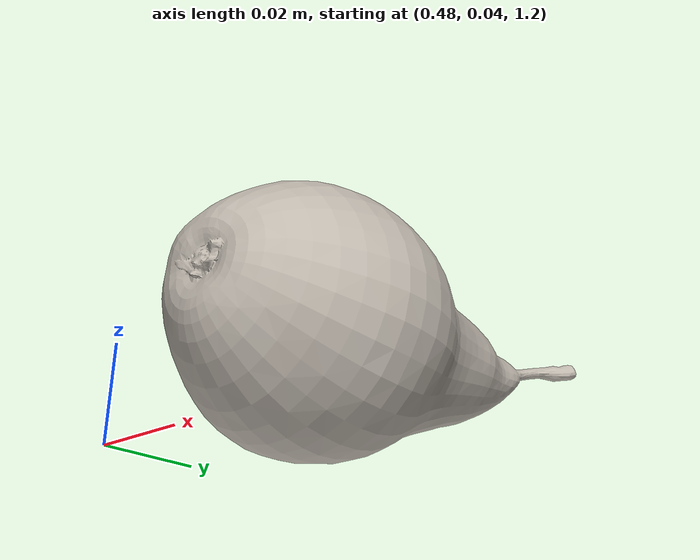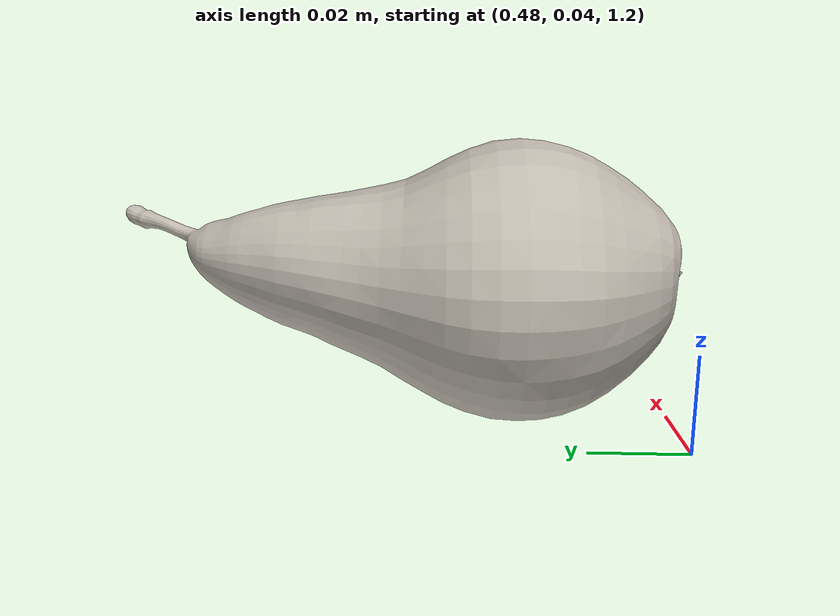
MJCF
<mujoco model="pear_7">
  <asset>
    <mesh file="../objects/bigym/pear_1/visual/model_normalized_0.obj" name="pear_1_model_normalized_0_vis" scale="0.12 0.12 0.12" refquat="0.4999999999999999 0.4999999999999999 0.5 0.5"/>
    <mesh file="../objects/bigym/pear_1/collision/model_normalized_collision_22.obj" name="pear_1_model_normalized_collision_22._coll" scale="0.12 0.12 0.12" refquat="0.4999999999999999 0.4999999999999999 0.5 0.5"/>
    <mesh file="../objects/bigym/pear_1/collision/model_normalized_collision_23.obj" name="pear_1_model_normalized_collision_23._coll" scale="0.12 0.12 0.12" refquat="0.4999999999999999 0.4999999999999999 0.5 0.5"/>
    <mesh file="../objects/bigym/pear_1/collision/model_normalized_collision_21.obj" name="pear_1_model_normalized_collision_21._coll" scale="0.12 0.12 0.12" refquat="0.4999999999999999 0.4999999999999999 0.5 0.5"/>
    <mesh file="../objects/bigym/pear_1/collision/model_normalized_collision_20.obj" name="pear_1_model_normalized_collision_20._coll" scale="0.12 0.12 0.12" refquat="0.4999999999999999 0.4999999999999999 0.5 0.5"/>
    <mesh file="../objects/bigym/pear_1/collision/model_normalized_collision_24.obj" name="pear_1_model_normalized_collision_24._coll" scale="0.12 0.12 0.12" refquat="0.4999999999999999 0.4999999999999999 0.5 0.5"/>
    <mesh file="../objects/bigym/pear_1/collision/model_normalized_collision_30.obj" name="pear_1_model_normalized_collision_30._coll" scale="0.12 0.12 0.12" refquat="0.4999999999999999 0.4999999999999999 0.5 0.5"/>
    <mesh file="../objects/bigym/pear_1/collision/model_normalized_collision_18.obj" name="pear_1_model_normalized_collision_18._coll" scale="0.12 0.12 0.12" refquat="0.4999999999999999 0.4999999999999999 0.5 0.5"/>
    <mesh file="../objects/bigym/pear_1/collision/model_normalized_collision_19.obj" name="pear_1_model_normalized_collision_19._coll" scale="0.12 0.12 0.12" refquat="0.4999999999999999 0.4999999999999999 0.5 0.5"/>
    <mesh file="../objects/bigym/pear_1/collision/model_normalized_collision_31.obj" name="pear_1_model_normalized_collision_31._coll" scale="0.12 0.12 0.12" refquat="0.4999999999999999 0.4999999999999999 0.5 0.5"/>
    <mesh file="../objects/bigym/pear_1/collision/model_normalized_collision_25.obj" name="pear_1_model_normalized_collision_25._coll" scale="0.12 0.12 0.12" refquat="0.4999999999999999 0.4999999999999999 0.5 0.5"/>
    <mesh file="../objects/bigym/pear_1/collision/model_normalized_collision_27.obj" name="pear_1_model_normalized_collision_27._coll" scale="0.12 0.12 0.12" refquat="0.4999999999999999 0.4999999999999999 0.5 0.5"/>
    <mesh file="../objects/bigym/pear_1/collision/model_normalized_collision_26.obj" name="pear_1_model_normalized_collision_26._coll" scale="0.12 0.12 0.12" refquat="0.4999999999999999 0.4999999999999999 0.5 0.5"/>
    <mesh file="../objects/bigym/pear_1/collision/model_normalized_collision_9.obj" name="pear_1_model_normalized_collision_9._coll" scale="0.12 0.12 0.12" refquat="0.4999999999999999 0.4999999999999999 0.5 0.5"/>
    <mesh file="../objects/bigym/pear_1/collision/model_normalized_collision_8.obj" name="pear_1_model_normalized_collision_8._coll" scale="0.12 0.12 0.12" refquat="0.4999999999999999 0.4999999999999999 0.5 0.5"/>
    <mesh file="../objects/bigym/pear_1/collision/model_normalized_collision_6.obj" name="pear_1_model_normalized_collision_6._coll" scale="0.12 0.12 0.12" refquat="0.4999999999999999 0.4999999999999999 0.5 0.5"/>
    <mesh file="../objects/bigym/pear_1/collision/model_normalized_collision_7.obj" name="pear_1_model_normalized_collision_7._coll" scale="0.12 0.12 0.12" refquat="0.4999999999999999 0.4999999999999999 0.5 0.5"/>
    <mesh file="../objects/bigym/pear_1/collision/model_normalized_collision_5.obj" name="pear_1_model_normalized_collision_5._coll" scale="0.12 0.12 0.12" refquat="0.4999999999999999 0.4999999999999999 0.5 0.5"/>
    <mesh file="../objects/bigym/pear_1/collision/model_normalized_collision_4.obj" name="pear_1_model_normalized_collision_4._coll" scale="0.12 0.12 0.12" refquat="0.4999999999999999 0.4999999999999999 0.5 0.5"/>
    <mesh file="../objects/bigym/pear_1/collision/model_normalized_collision_0.obj" name="pear_1_model_normalized_collision_0._coll" scale="0.12 0.12 0.12" refquat="0.4999999999999999 0.4999999999999999 0.5 0.5"/>
    <mesh file="../objects/bigym/pear_1/collision/model_normalized_collision_1.obj" name="pear_1_model_normalized_collision_1._coll" scale="0.12 0.12 0.12" refquat="0.4999999999999999 0.4999999999999999 0.5 0.5"/>
    <mesh file="../objects/bigym/pear_1/collision/model_normalized_collision_3.obj" name="pear_1_model_normalized_collision_3._coll" scale="0.12 0.12 0.12" refquat="0.4999999999999999 0.4999999999999999 0.5 0.5"/>
    <mesh file="../objects/bigym/pear_1/collision/model_normalized_collision_2.obj" name="pear_1_model_normalized_collision_2._coll" scale="0.12 0.12 0.12" refquat="0.4999999999999999 0.4999999999999999 0.5 0.5"/>
    <mesh file="../objects/bigym/pear_1/collision/model_normalized_collision_17.obj" name="pear_1_model_normalized_collision_17._coll" scale="0.12 0.12 0.12" refquat="0.4999999999999999 0.4999999999999999 0.5 0.5"/>
    <mesh file="../objects/bigym/pear_1/collision/model_normalized_collision_16.obj" name="pear_1_model_normalized_collision_16._coll" scale="0.12 0.12 0.12" refquat="0.4999999999999999 0.4999999999999999 0.5 0.5"/>
    <mesh file="../objects/bigym/pear_1/collision/model_normalized_collision_28.obj" name="pear_1_model_normalized_collision_28._coll" scale="0.12 0.12 0.12" refquat="0.4999999999999999 0.4999999999999999 0.5 0.5"/>
    <mesh file="../objects/bigym/pear_1/collision/model_normalized_collision_14.obj" name="pear_1_model_normalized_collision_14._coll" scale="0.12 0.12 0.12" refquat="0.4999999999999999 0.4999999999999999 0.5 0.5"/>
    <mesh file="../objects/bigym/pear_1/collision/model_normalized_collision_15.obj" name="pear_1_model_normalized_collision_15._coll" scale="0.12 0.12 0.12" refquat="0.4999999999999999 0.4999999999999999 0.5 0.5"/>
    <mesh file="../objects/bigym/pear_1/collision/model_normalized_collision_29.obj" name="pear_1_model_normalized_collision_29._coll" scale="0.12 0.12 0.12" refquat="0.4999999999999999 0.4999999999999999 0.5 0.5"/>
    <mesh file="../objects/bigym/pear_1/collision/model_normalized_collision_11.obj" name="pear_1_model_normalized_collision_11._coll" scale="0.12 0.12 0.12" refquat="0.4999999999999999 0.4999999999999999 0.5 0.5"/>
    <mesh file="../objects/bigym/pear_1/collision/model_normalized_collision_10.obj" name="pear_1_model_normalized_collision_10._coll" scale="0.12 0.12 0.12" refquat="0.4999999999999999 0.4999999999999999 0.5 0.5"/>
    <mesh file="../objects/bigym/pear_1/collision/model_normalized_collision_12.obj" name="pear_1_model_normalized_collision_12._coll" scale="0.12 0.12 0.12" refquat="0.4999999999999999 0.4999999999999999 0.5 0.5"/>
    <mesh file="../objects/bigym/pear_1/collision/model_normalized_collision_13.obj" name="pear_1_model_normalized_collision_13._coll" scale="0.12 0.12 0.12" refquat="0.4999999999999999 0.4999999999999999 0.5 0.5"/>
    <texture type="2d" name="pear_1_image0" file="../objects/bigym/pear_1/visual/image0.png"/>
    <material name="material_0.094" texture="pear_1_image0" specular="0.5" shininess="0.15999998099999999"/>
  </asset>

  <default class="main">
    <default class="pear_1">
      <default class="pear_1_visual">
        <geom type="mesh" contype="0" conaffinity="0" group="2"/>
      </default>
      <default class="pear_1_collision">
        <geom type="mesh" group="3" solref="0.004" solimp="0.95 0.98" condim="3"/>
      </default>
    </default>
  </default>

  <worldbody>
      <body name="pear_1_object" pos="0.5 0.1 1.23" quat=" 1 0 0 0">
        <freejoint/>
        <geom class="pear_1_visual" mesh="pear_1_model_normalized_0_vis" material="material_0.094"/>
        <geom class="pear_1_collision" mesh="pear_1_model_normalized_collision_22._coll" rgba="0.8 0.8 0.8 0.0"/>
        <geom class="pear_1_collision" mesh="pear_1_model_normalized_collision_23._coll" rgba="0.8 0.8 0.8 0.0"/>
        <geom class="pear_1_collision" mesh="pear_1_model_normalized_collision_21._coll" rgba="0.8 0.8 0.8 0.0"/>
        <geom class="pear_1_collision" mesh="pear_1_model_normalized_collision_20._coll" rgba="0.8 0.8 0.8 0.0"/>
        <geom class="pear_1_collision" mesh="pear_1_model_normalized_collision_24._coll" rgba="0.8 0.8 0.8 0.0"/>
        <geom class="pear_1_collision" mesh="pear_1_model_normalized_collision_30._coll" rgba="0.8 0.8 0.8 0.0"/>
        <geom class="pear_1_collision" mesh="pear_1_model_normalized_collision_18._coll" rgba="0.8 0.8 0.8 0.0"/>
        <geom class="pear_1_collision" mesh="pear_1_model_normalized_collision_19._coll" rgba="0.8 0.8 0.8 0.0"/>
        <geom class="pear_1_collision" mesh="pear_1_model_normalized_collision_31._coll" rgba="0.8 0.8 0.8 0.0"/>
        <geom class="pear_1_collision" mesh="pear_1_model_normalized_collision_25._coll" rgba="0.8 0.8 0.8 0.0"/>
        <geom class="pear_1_collision" mesh="pear_1_model_normalized_collision_27._coll" rgba="0.8 0.8 0.8 0.0"/>
        <geom class="pear_1_collision" mesh="pear_1_model_normalized_collision_26._coll" rgba="0.8 0.8 0.8 0.0"/>
        <geom class="pear_1_collision" mesh="pear_1_model_normalized_collision_9._coll" rgba="0.8 0.8 0.8 0.0"/>
        <geom class="pear_1_collision" mesh="pear_1_model_normalized_collision_8._coll" rgba="0.8 0.8 0.8 0.0"/>
        <geom class="pear_1_collision" mesh="pear_1_model_normalized_collision_6._coll" rgba="0.8 0.8 0.8 0.0"/>
        <geom class="pear_1_collision" mesh="pear_1_model_normalized_collision_7._coll" rgba="0.8 0.8 0.8 0.0"/>
        <geom class="pear_1_collision" mesh="pear_1_model_normalized_collision_5._coll" rgba="0.8 0.8 0.8 0.0"/>
        <geom class="pear_1_collision" mesh="pear_1_model_normalized_collision_4._coll" rgba="0.8 0.8 0.8 0.0"/>
        <geom class="pear_1_collision" mesh="pear_1_model_normalized_collision_0._coll" rgba="0.8 0.8 0.8 0.0"/>
        <geom class="pear_1_collision" mesh="pear_1_model_normalized_collision_1._coll" rgba="0.8 0.8 0.8 0.0"/>
        <geom class="pear_1_collision" mesh="pear_1_model_normalized_collision_3._coll" rgba="0.8 0.8 0.8 0.0"/>
        <geom class="pear_1_collision" mesh="pear_1_model_normalized_collision_2._coll" rgba="0.8 0.8 0.8 0.0"/>
        <geom class="pear_1_collision" mesh="pear_1_model_normalized_collision_17._coll" rgba="0.8 0.8 0.8 0.0"/>
        <geom class="pear_1_collision" mesh="pear_1_model_normalized_collision_16._coll" rgba="0.8 0.8 0.8 0.0"/>
        <geom class="pear_1_collision" mesh="pear_1_model_normalized_collision_28._coll" rgba="0.8 0.8 0.8 0.0"/>
        <geom class="pear_1_collision" mesh="pear_1_model_normalized_collision_14._coll" rgba="0.8 0.8 0.8 0.0"/>
        <geom class="pear_1_collision" mesh="pear_1_model_normalized_collision_15._coll" rgba="0.8 0.8 0.8 0.0"/>
        <geom class="pear_1_collision" mesh="pear_1_model_normalized_collision_29._coll" rgba="0.8 0.8 0.8 0.0"/>
        <geom class="pear_1_collision" mesh="pear_1_model_normalized_collision_11._coll" rgba="0.8 0.8 0.8 0.0"/>
        <geom class="pear_1_collision" mesh="pear_1_model_normalized_collision_10._coll" rgba="0.8 0.8 0.8 0.0"/>
        <geom class="pear_1_collision" mesh="pear_1_model_normalized_collision_12._coll" rgba="0.8 0.8 0.8 0.0"/>
        <geom class="pear_1_collision" mesh="pear_1_model_normalized_collision_13._coll" rgba="0.8 0.8 0.8 0.0"/>
      </body>
  </worldbody>
</mujoco>
